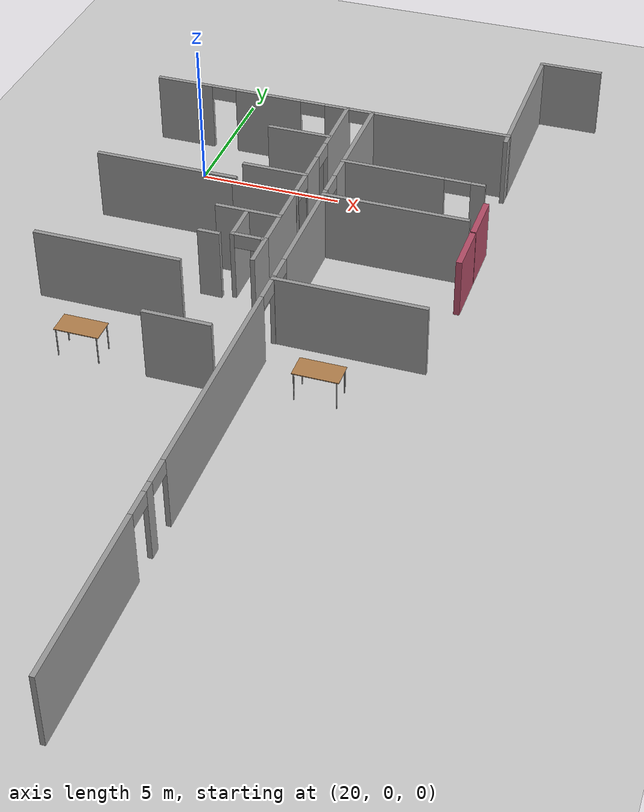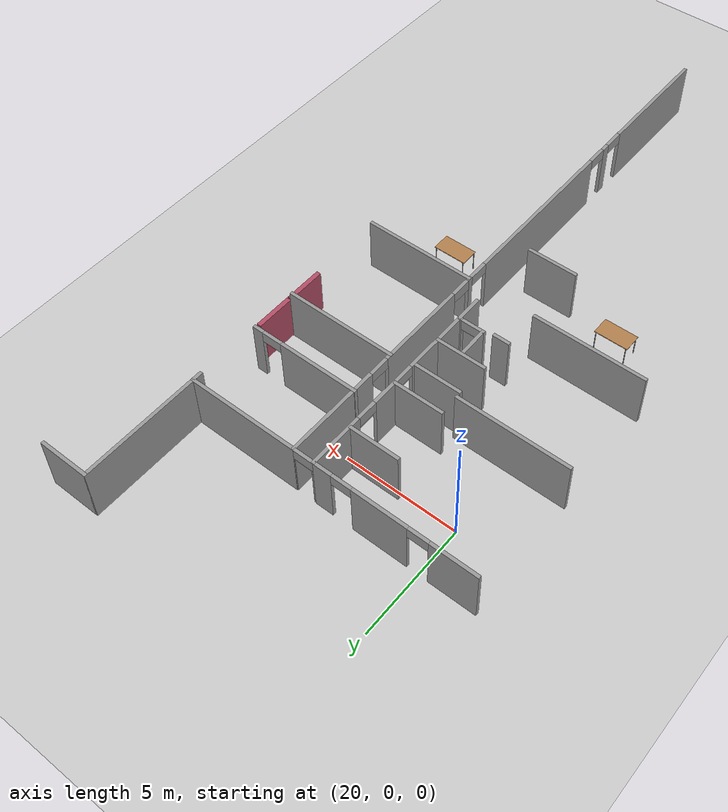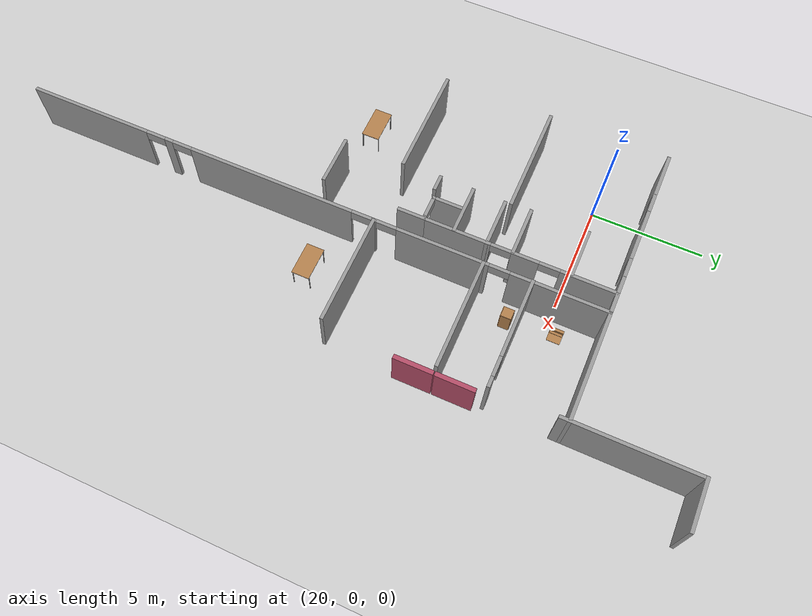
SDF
<sdf version="1.6">
 <world name="default">
  <model name="ground_plane">
   <pose>0 0 0.001 0 -0 0</pose>
   <static>1</static>
   <link name="link">
    <collision name="collision">
     <geometry><plane><normal>0 0 1</normal><size>100 100</size></plane></geometry>
     <surface><friction><ode><mu>100</mu><mu2>50</mu2></ode></friction></surface>
    </collision>
    <visual name="visual">
     <cast_shadows>0</cast_shadows>
     <geometry><plane><normal>0 0 1</normal><size>100 100</size></plane></geometry>
     <material>
      <script><uri>file://media/materials/scripts/gazebo.material</uri><name>Gazebo/Grey</name></script>
     </material>
    </visual>
   </link>
  </model>
  <model name="fin_se1f1.sdf">
   <pose>1.8125 -2.2901 0 0 -0 0</pose>
   <link name="Wall_12">
    <collision name="Wall_12_Collision">
     <geometry><box><size>5.75 0.15 2.5</size></box></geometry>
     <pose>0 0 1.25 0 -0 0</pose>
    </collision>
    <visual name="Wall_12_Visual">
     <pose>0 0 1.25 0 -0 0</pose>
     <geometry><box><size>5.75 0.15 2.5</size></box></geometry>
     <material>
      <script><uri>file://media/materials/scripts/gazebo.material</uri><name>Gazebo/Grey</name></script>
      <ambient>1 1 1 1</ambient>
     </material>
     <meta><layer>0</layer></meta>
    </visual>
    <pose>28.6504 6.82457 0 0 -0 1.5708</pose>
   </link>
   <link name="Wall_13">
    <collision name="Wall_13_Collision">
     <geometry><box><size>2.25 0.15 2.5</size></box></geometry>
     <pose>0 0 1.25 0 -0 0</pose>
    </collision>
    <visual name="Wall_13_Visual">
     <pose>0 0 1.25 0 -0 0</pose>
     <geometry><box><size>2.25 0.15 2.5</size></box></geometry>
     <material>
      <script><uri>file://media/materials/scripts/gazebo.material</uri><name>Gazebo/Grey</name></script>
      <ambient>1 1 1 1</ambient>
     </material>
     <meta><layer>0</layer></meta>
    </visual>
    <pose>29.7004 9.62457 0.001 0 -0 0</pose>
   </link>
   <link name="Wall_163">
    <pose>22.2268 4.38596 0 0 -0 3.14159</pose>
    <visual name="Wall_163_Visual_0">
     <pose>-4.00766 0 1.25 0 -0 0</pose>
     <geometry><box><size>4.98467 0.15 2.5</size></box></geometry>
     <material>
      <script><uri>file://media/materials/scripts/gazebo.material</uri><name>Gazebo/Grey</name></script>
      <ambient>1 1 1 1</ambient>
     </material>
     <meta><layer>0</layer></meta>
    </visual>
    <collision name="Wall_163_Collision_0">
     <geometry><box><size>4.98467 0.15 2.5</size></box></geometry>
     <pose>-4.00766 0 1.25 0 -0 0</pose>
    </collision>
    <visual name="Wall_163_Visual_1">
     <pose>-0.2105 0 1.25 0 -0 0</pose>
     <geometry><box><size>0.809654 0.15 2.5</size></box></geometry>
     <material>
      <script><uri>file://media/materials/scripts/gazebo.material</uri><name>Gazebo/Grey</name></script>
      <ambient>1 1 1 1</ambient>
     </material>
     <meta><layer>0</layer></meta>
    </visual>
    <collision name="Wall_163_Collision_1">
     <geometry><box><size>0.809654 0.15 2.5</size></box></geometry>
     <pose>-0.2105 0 1.25 0 -0 0</pose>
    </collision>
    <visual name="Wall_163_Visual_2">
     <pose>2.31375 0 1.25 0 -0 0</pose>
     <geometry><box><size>2.43885 0.15 2.5</size></box></geometry>
     <material>
      <script><uri>file://media/materials/scripts/gazebo.material</uri><name>Gazebo/Grey</name></script>
      <ambient>1 1 1 1</ambient>
     </material>
     <meta><layer>0</layer></meta>
    </visual>
    <collision name="Wall_163_Collision_2">
     <geometry><box><size>2.43885 0.15 2.5</size></box></geometry>
     <pose>2.31375 0 1.25 0 -0 0</pose>
    </collision>
    <visual name="Wall_163_Visual_3">
     <pose>5.46659 0 1.25 0 -0 0</pose>
     <geometry><box><size>2.06682 0.15 2.5</size></box></geometry>
     <material>
      <script><uri>file://media/materials/scripts/gazebo.material</uri><name>Gazebo/Grey</name></script>
      <ambient>1 1 1 1</ambient>
     </material>
     <meta><layer>0</layer></meta>
    </visual>
    <collision name="Wall_163_Collision_3">
     <geometry><box><size>2.06682 0.15 2.5</size></box></geometry>
     <pose>5.46659 0 1.25 0 -0 0</pose>
    </collision>
    <visual name="Wall_163_Visual_4">
     <pose>-1.06533 0 2.25 0 -0 0</pose>
     <geometry><box><size>0.9 0.15 0.5</size></box></geometry>
     <material>
      <script><uri>file://media/materials/scripts/gazebo.material</uri><name>Gazebo/Grey</name></script>
      <ambient>1 1 1 1</ambient>
     </material>
     <meta><layer>0</layer></meta>
    </visual>
    <collision name="Wall_163_Collision_4">
     <geometry><box><size>0.9 0.15 0.5</size></box></geometry>
     <pose>-1.06533 0 2.25 0 -0 0</pose>
    </collision>
    <visual name="Wall_163_Visual_5">
     <pose>0.644327 0 2.25 0 -0 0</pose>
     <geometry><box><size>0.9 0.15 0.5</size></box></geometry>
     <material>
      <script><uri>file://media/materials/scripts/gazebo.material</uri><name>Gazebo/Grey</name></script>
      <ambient>1 1 1 1</ambient>
     </material>
     <meta><layer>0</layer></meta>
    </visual>
    <collision name="Wall_163_Collision_5">
     <geometry><box><size>0.9 0.15 0.5</size></box></geometry>
     <pose>0.644327 0 2.25 0 -0 0</pose>
    </collision>
    <visual name="Wall_163_Visual_6">
     <pose>3.98318 0 2.25 0 -0 0</pose>
     <geometry><box><size>0.9 0.15 0.5</size></box></geometry>
     <material>
      <script><uri>file://media/materials/scripts/gazebo.material</uri><name>Gazebo/Grey</name></script>
      <ambient>1 1 1 1</ambient>
     </material>
     <meta><layer>0</layer></meta>
    </visual>
    <collision name="Wall_163_Collision_6">
     <geometry><box><size>0.9 0.15 0.5</size></box></geometry>
     <pose>3.98318 0 2.25 0 -0 0</pose>
    </collision>
   </link>
   <link name="Wall_169">
    <pose>23.7723 -8.93568 0 0 0 -1.5708</pose>
    <visual name="Wall_169_Visual_0">
     <pose>-11.2367 0 1.25 0 -0 0</pose>
     <geometry><box><size>4.27658 0.15 2.5</size></box></geometry>
     <material>
      <script><uri>file://media/materials/scripts/gazebo.material</uri><name>Gazebo/Grey</name></script>
      <ambient>1 1 1 1</ambient>
     </material>
     <meta><layer>0</layer></meta>
    </visual>
    <collision name="Wall_169_Collision_0">
     <geometry><box><size>4.27658 0.15 2.5</size></box></geometry>
     <pose>-11.2367 0 1.25 0 -0 0</pose>
    </collision>
    <visual name="Wall_169_Visual_1">
     <pose>-6.16439 0 1.25 0 -0 0</pose>
     <geometry><box><size>4.06805 0.15 2.5</size></box></geometry>
     <material>
      <script><uri>file://media/materials/scripts/gazebo.material</uri><name>Gazebo/Grey</name></script>
      <ambient>1 1 1 1</ambient>
     </material>
     <meta><layer>0</layer></meta>
    </visual>
    <collision name="Wall_169_Collision_1">
     <geometry><box><size>4.06805 0.15 2.5</size></box></geometry>
     <pose>-6.16439 0 1.25 0 -0 0</pose>
    </collision>
    <visual name="Wall_169_Visual_2">
     <pose>-3.11719 0 1.25 0 -0 0</pose>
     <geometry><box><size>0.22636 0.15 2.5</size></box></geometry>
     <material>
      <script><uri>file://media/materials/scripts/gazebo.material</uri><name>Gazebo/Grey</name></script>
      <ambient>1 1 1 1</ambient>
     </material>
     <meta><layer>0</layer></meta>
    </visual>
    <collision name="Wall_169_Collision_2">
     <geometry><box><size>0.22636 0.15 2.5</size></box></geometry>
     <pose>-3.11719 0 1.25 0 -0 0</pose>
    </collision>
    <visual name="Wall_169_Visual_3">
     <pose>1.70001 0 1.25 0 -0 0</pose>
     <geometry><box><size>7.60804 0.15 2.5</size></box></geometry>
     <material>
      <script><uri>file://media/materials/scripts/gazebo.material</uri><name>Gazebo/Grey</name></script>
      <ambient>1 1 1 1</ambient>
     </material>
     <meta><layer>0</layer></meta>
    </visual>
    <collision name="Wall_169_Collision_3">
     <geometry><box><size>7.60804 0.15 2.5</size></box></geometry>
     <pose>1.70001 0 1.25 0 -0 0</pose>
    </collision>
    <visual name="Wall_169_Visual_4">
     <pose>6.59767 0 1.25 0 -0 0</pose>
     <geometry><box><size>0.387269 0.15 2.5</size></box></geometry>
     <material>
      <script><uri>file://media/materials/scripts/gazebo.material</uri><name>Gazebo/Grey</name></script>
      <ambient>1 1 1 1</ambient>
     </material>
     <meta><layer>0</layer></meta>
    </visual>
    <collision name="Wall_169_Collision_4">
     <geometry><box><size>0.387269 0.15 2.5</size></box></geometry>
     <pose>6.59767 0 1.25 0 -0 0</pose>
    </collision>
    <visual name="Wall_169_Visual_5">
     <pose>10.5332 0 1.25 0 -0 0</pose>
     <geometry><box><size>5.6837 0.15 2.5</size></box></geometry>
     <material>
      <script><uri>file://media/materials/scripts/gazebo.material</uri><name>Gazebo/Grey</name></script>
      <ambient>1 1 1 1</ambient>
     </material>
     <meta><layer>0</layer></meta>
    </visual>
    <collision name="Wall_169_Collision_5">
     <geometry><box><size>5.6837 0.15 2.5</size></box></geometry>
     <pose>10.5332 0 1.25 0 -0 0</pose>
    </collision>
    <visual name="Wall_169_Visual_6">
     <pose>-8.64842 0 2.25 0 -0 0</pose>
     <geometry><box><size>0.9 0.15 0.5</size></box></geometry>
     <material>
      <script><uri>file://media/materials/scripts/gazebo.material</uri><name>Gazebo/Grey</name></script>
      <ambient>1 1 1 1</ambient>
     </material>
     <meta><layer>0</layer></meta>
    </visual>
    <collision name="Wall_169_Collision_6">
     <geometry><box><size>0.9 0.15 0.5</size></box></geometry>
     <pose>-8.64842 0 2.25 0 -0 0</pose>
    </collision>
    <visual name="Wall_169_Visual_7">
     <pose>-3.68037 0 2.25 0 -0 0</pose>
     <geometry><box><size>0.9 0.15 0.5</size></box></geometry>
     <material>
      <script><uri>file://media/materials/scripts/gazebo.material</uri><name>Gazebo/Grey</name></script>
      <ambient>1 1 1 1</ambient>
     </material>
     <meta><layer>0</layer></meta>
    </visual>
    <collision name="Wall_169_Collision_7">
     <geometry><box><size>0.9 0.15 0.5</size></box></geometry>
     <pose>-3.68037 0 2.25 0 -0 0</pose>
    </collision>
    <visual name="Wall_169_Visual_8">
     <pose>-2.55401 0 2.25 0 -0 0</pose>
     <geometry><box><size>0.9 0.15 0.5</size></box></geometry>
     <material>
      <script><uri>file://media/materials/scripts/gazebo.material</uri><name>Gazebo/Grey</name></script>
      <ambient>1 1 1 1</ambient>
     </material>
     <meta><layer>0</layer></meta>
    </visual>
    <collision name="Wall_169_Collision_8">
     <geometry><box><size>0.9 0.15 0.5</size></box></geometry>
     <pose>-2.55401 0 2.25 0 -0 0</pose>
    </collision>
    <visual name="Wall_169_Visual_9">
     <pose>5.95404 0 2.25 0 -0 0</pose>
     <geometry><box><size>0.9 0.15 0.5</size></box></geometry>
     <material>
      <script><uri>file://media/materials/scripts/gazebo.material</uri><name>Gazebo/Grey</name></script>
      <ambient>1 1 1 1</ambient>
     </material>
     <meta><layer>0</layer></meta>
    </visual>
    <collision name="Wall_169_Collision_9">
     <geometry><box><size>0.9 0.15 0.5</size></box></geometry>
     <pose>5.95404 0 2.25 0 -0 0</pose>
    </collision>
    <visual name="Wall_169_Visual_10">
     <pose>7.2413 0 2.25 0 -0 0</pose>
     <geometry><box><size>0.9 0.15 0.5</size></box></geometry>
     <material>
      <script><uri>file://media/materials/scripts/gazebo.material</uri><name>Gazebo/Grey</name></script>
      <ambient>1 1 1 1</ambient>
     </material>
     <meta><layer>0</layer></meta>
    </visual>
    <collision name="Wall_169_Collision_10">
     <geometry><box><size>0.9 0.15 0.5</size></box></geometry>
     <pose>7.2413 0 2.25 0 -0 0</pose>
    </collision>
   </link>
   <link name="Wall_171">
    <pose>22.8525 0.189322 0 0 0 -1.5708</pose>
    <visual name="Wall_171_Visual_0">
     <pose>-3.01682 0 1.25 0 -0 0</pose>
     <geometry><box><size>2.46636 0.15 2.5</size></box></geometry>
     <material>
      <script><uri>file://media/materials/scripts/gazebo.material</uri><name>Gazebo/Grey</name></script>
      <ambient>1 1 1 1</ambient>
     </material>
     <meta><layer>0</layer></meta>
    </visual>
    <collision name="Wall_171_Collision_0">
     <geometry><box><size>2.46636 0.15 2.5</size></box></geometry>
     <pose>-3.01682 0 1.25 0 -0 0</pose>
    </collision>
    <visual name="Wall_171_Visual_1">
     <pose>-0.287734 0 1.25 0 -0 0</pose>
     <geometry><box><size>1.19181 0.15 2.5</size></box></geometry>
     <material>
      <script><uri>file://media/materials/scripts/gazebo.material</uri><name>Gazebo/Grey</name></script>
      <ambient>1 1 1 1</ambient>
     </material>
     <meta><layer>0</layer></meta>
    </visual>
    <collision name="Wall_171_Collision_1">
     <geometry><box><size>1.19181 0.15 2.5</size></box></geometry>
     <pose>-0.287734 0 1.25 0 -0 0</pose>
    </collision>
    <visual name="Wall_171_Visual_2">
     <pose>2.72909 0 1.25 0 -0 0</pose>
     <geometry><box><size>3.04183 0.15 2.5</size></box></geometry>
     <material>
      <script><uri>file://media/materials/scripts/gazebo.material</uri><name>Gazebo/Grey</name></script>
      <ambient>1 1 1 1</ambient>
     </material>
     <meta><layer>0</layer></meta>
    </visual>
    <collision name="Wall_171_Collision_2">
     <geometry><box><size>3.04183 0.15 2.5</size></box></geometry>
     <pose>2.72909 0 1.25 0 -0 0</pose>
    </collision>
    <visual name="Wall_171_Visual_3">
     <pose>-1.33364 0 2.25 0 -0 0</pose>
     <geometry><box><size>0.9 0.15 0.5</size></box></geometry>
     <material>
      <script><uri>file://media/materials/scripts/gazebo.material</uri><name>Gazebo/Grey</name></script>
      <ambient>1 1 1 1</ambient>
     </material>
     <meta><layer>0</layer></meta>
    </visual>
    <collision name="Wall_171_Collision_3">
     <geometry><box><size>0.9 0.15 0.5</size></box></geometry>
     <pose>-1.33364 0 2.25 0 -0 0</pose>
    </collision>
    <visual name="Wall_171_Visual_4">
     <pose>0.758172 0 2.25 0 -0 0</pose>
     <geometry><box><size>0.9 0.15 0.5</size></box></geometry>
     <material>
      <script><uri>file://media/materials/scripts/gazebo.material</uri><name>Gazebo/Grey</name></script>
      <ambient>1 1 1 1</ambient>
     </material>
     <meta><layer>0</layer></meta>
    </visual>
    <collision name="Wall_171_Collision_4">
     <geometry><box><size>0.9 0.15 0.5</size></box></geometry>
     <pose>0.758172 0 2.25 0 -0 0</pose>
    </collision>
   </link>
   <link name="Wall_172">
    <pose>22.3025 -3.98568 0 0 -0 3.14159</pose>
    <visual name="Wall_172_Visual_0">
     <pose>-0.519407 0 1.25 0 -0 0</pose>
     <geometry><box><size>0.211186 0.15 2.5</size></box></geometry>
     <material>
      <script><uri>file://media/materials/scripts/gazebo.material</uri><name>Gazebo/Grey</name></script>
      <ambient>1 1 1 1</ambient>
     </material>
     <meta><layer>0</layer></meta>
    </visual>
    <collision name="Wall_172_Collision_0">
     <geometry><box><size>0.211186 0.15 2.5</size></box></geometry>
     <pose>-0.519407 0 1.25 0 -0 0</pose>
    </collision>
    <visual name="Wall_172_Visual_1">
     <pose>0.555593 0 1.25 0 -0 0</pose>
     <geometry><box><size>0.138814 0.15 2.5</size></box></geometry>
     <material>
      <script><uri>file://media/materials/scripts/gazebo.material</uri><name>Gazebo/Grey</name></script>
      <ambient>1 1 1 1</ambient>
     </material>
     <meta><layer>0</layer></meta>
    </visual>
    <collision name="Wall_172_Collision_1">
     <geometry><box><size>0.138814 0.15 2.5</size></box></geometry>
     <pose>0.555593 0 1.25 0 -0 0</pose>
    </collision>
    <visual name="Wall_172_Visual_2">
     <pose>0.036186 0 2.25 0 -0 0</pose>
     <geometry><box><size>0.9 0.15 0.5</size></box></geometry>
     <material>
      <script><uri>file://media/materials/scripts/gazebo.material</uri><name>Gazebo/Grey</name></script>
      <ambient>1 1 1 1</ambient>
     </material>
     <meta><layer>0</layer></meta>
    </visual>
    <collision name="Wall_172_Collision_2">
     <geometry><box><size>0.9 0.15 0.5</size></box></geometry>
     <pose>0.036186 0 2.25 0 -0 0</pose>
    </collision>
   </link>
   <link name="Wall_173">
    <collision name="Wall_173_Collision">
     <geometry><box><size>1.5 0.15 2.5</size></box></geometry>
     <pose>0 0 1.25 0 -0 0</pose>
    </collision>
    <visual name="Wall_173_Visual">
     <pose>0 0 1.25 0 -0 0</pose>
     <geometry><box><size>1.5 0.15 2.5</size></box></geometry>
     <material>
      <script><uri>file://media/materials/scripts/gazebo.material</uri><name>Gazebo/Grey</name></script>
      <ambient>1 1 1 1</ambient>
     </material>
     <meta><layer>0</layer></meta>
    </visual>
    <pose>21.7525 -3.31068 0 0 -0 1.5708</pose>
   </link>
   <link name="Wall_178">
    <collision name="Wall_178_Collision">
     <geometry><box><size>2.25 0.15 2.5</size></box></geometry>
     <pose>0 0 1.25 0 -0 0</pose>
    </collision>
    <visual name="Wall_178_Visual">
     <pose>0 0 1.25 0 -0 0</pose>
     <geometry><box><size>2.25 0.15 2.5</size></box></geometry>
     <material>
      <script><uri>file://media/materials/scripts/gazebo.material</uri><name>Gazebo/Grey</name></script>
      <ambient>1 1 1 1</ambient>
     </material>
     <meta><layer>0</layer></meta>
    </visual>
    <pose>21.751 2.44334 0.001 0 -0 0</pose>
   </link>
   <link name="Wall_180">
    <collision name="Wall_180_Collision">
     <geometry><box><size>2.25 0.15 2.5</size></box></geometry>
     <pose>0 0 1.25 0 -0 0</pose>
    </collision>
    <visual name="Wall_180_Visual">
     <pose>0 0 1.25 0 -0 0</pose>
     <geometry><box><size>2.25 0.15 2.5</size></box></geometry>
     <material>
      <script><uri>file://media/materials/scripts/gazebo.material</uri><name>Gazebo/Grey</name></script>
      <ambient>1 1 1 1</ambient>
     </material>
     <meta><layer>0</layer></meta>
    </visual>
    <pose>21.751 -0.065056 0.001 0 -0 0</pose>
   </link>
   <link name="Wall_182">
    <collision name="Wall_182_Collision">
     <geometry><box><size>2.25 0.15 2.5</size></box></geometry>
     <pose>0 0 1.25 0 -0 0</pose>
    </collision>
    <visual name="Wall_182_Visual">
     <pose>0 0 1.25 0 -0 0</pose>
     <geometry><box><size>2.25 0.15 2.5</size></box></geometry>
     <material>
      <script><uri>file://media/materials/scripts/gazebo.material</uri><name>Gazebo/Grey</name></script>
      <ambient>1 1 1 1</ambient>
     </material>
     <meta><layer>0</layer></meta>
    </visual>
    <pose>21.7816 -2.63463 0.001 0 -0 0</pose>
   </link>
   <link name="Wall_184">
    <collision name="Wall_184_Collision">
     <geometry><box><size>2.25 0.15 2.5</size></box></geometry>
     <pose>0 0 1.25 0 -0 0</pose>
    </collision>
    <visual name="Wall_184_Visual">
     <pose>0 0 1.25 0 -0 0</pose>
     <geometry><box><size>2.25 0.15 2.5</size></box></geometry>
     <material>
      <script><uri>file://media/materials/scripts/gazebo.material</uri><name>Gazebo/Grey</name></script>
      <ambient>1 1 1 1</ambient>
     </material>
     <meta><layer>0</layer></meta>
    </visual>
    <pose>21.8132 -1.19202 0 0 -0 3.14159</pose>
   </link>
   <link name="Wall_186">
    <collision name="Wall_186_Collision">
     <geometry><box><size>0.75 0.15 2.5</size></box></geometry>
     <pose>0 0 1.25 0 -0 0</pose>
    </collision>
    <visual name="Wall_186_Visual">
     <pose>0 0 1.25 0 -0 0</pose>
     <geometry><box><size>0.75 0.15 2.5</size></box></geometry>
     <material>
      <script><uri>file://media/materials/scripts/gazebo.material</uri><name>Gazebo/Grey</name></script>
      <ambient>1 1 1 1</ambient>
     </material>
     <meta><layer>0</layer></meta>
    </visual>
    <pose>21.0031 -4.12868 0 0 -0 3.14159</pose>
   </link>
   <link name="Wall_188">
    <collision name="Wall_188_Collision">
     <geometry><box><size>1.25 0.15 2.5</size></box></geometry>
     <pose>0 0 1.25 0 -0 0</pose>
    </collision>
    <visual name="Wall_188_Visual">
     <pose>0 0 1.25 0 -0 0</pose>
     <geometry><box><size>1.25 0.15 2.5</size></box></geometry>
     <material>
      <script><uri>file://media/materials/scripts/gazebo.material</uri><name>Gazebo/Grey</name></script>
      <ambient>1 1 1 1</ambient>
     </material>
     <meta><layer>0</layer></meta>
    </visual>
    <pose>22.8525 -4.53568 0 0 0 -1.5708</pose>
   </link>
   <link name="Wall_190">
    <collision name="Wall_190_Collision">
     <geometry><box><size>5 0.15 2.5</size></box></geometry>
     <pose>0 0 1.25 0 -0 0</pose>
    </collision>
    <visual name="Wall_190_Visual">
     <pose>0 0 1.25 0 -0 0</pose>
     <geometry><box><size>5 0.15 2.5</size></box></geometry>
     <material>
      <script><uri>file://media/materials/scripts/gazebo.material</uri><name>Gazebo/Grey</name></script>
      <ambient>1 1 1 1</ambient>
     </material>
     <meta><layer>0</layer></meta>
    </visual>
    <pose>18.2357 -0.947296 0 0 -0 3.14159</pose>
   </link>
   <link name="Wall_192">
    <pose>26.1753 1.13284 0.001 0 -0 0</pose>
    <visual name="Wall_192_Visual_0">
     <pose>-0.694062 0 1.25 0 -0 0</pose>
     <geometry><box><size>3.61188 0.15 2.5</size></box></geometry>
     <material>
      <script><uri>file://media/materials/scripts/gazebo.material</uri><name>Gazebo/Grey</name></script>
      <ambient>1 1 1 1</ambient>
     </material>
     <meta><layer>0</layer></meta>
    </visual>
    <collision name="Wall_192_Collision_0">
     <geometry><box><size>3.61188 0.15 2.5</size></box></geometry>
     <pose>-0.694062 0 1.25 0 -0 0</pose>
    </collision>
    <visual name="Wall_192_Visual_1">
     <pose>2.25594 0 1.25 0 -0 0</pose>
     <geometry><box><size>0.488124 0.15 2.5</size></box></geometry>
     <material>
      <script><uri>file://media/materials/scripts/gazebo.material</uri><name>Gazebo/Grey</name></script>
      <ambient>1 1 1 1</ambient>
     </material>
     <meta><layer>0</layer></meta>
    </visual>
    <collision name="Wall_192_Collision_1">
     <geometry><box><size>0.488124 0.15 2.5</size></box></geometry>
     <pose>2.25594 0 1.25 0 -0 0</pose>
    </collision>
    <visual name="Wall_192_Visual_2">
     <pose>1.56188 0 2.25 0 -0 0</pose>
     <geometry><box><size>0.9 0.15 0.5</size></box></geometry>
     <material>
      <script><uri>file://media/materials/scripts/gazebo.material</uri><name>Gazebo/Grey</name></script>
      <ambient>1 1 1 1</ambient>
     </material>
     <meta><layer>0</layer></meta>
    </visual>
    <collision name="Wall_192_Collision_2">
     <geometry><box><size>0.9 0.15 0.5</size></box></geometry>
     <pose>1.56188 0 2.25 0 -0 0</pose>
    </collision>
   </link>
   <link name="Wall_194">
    <collision name="Wall_194_Collision">
     <geometry><box><size>5 0.15 2.5</size></box></geometry>
     <pose>0 0 1.25 0 -0 0</pose>
    </collision>
    <visual name="Wall_194_Visual">
     <pose>0 0 1.25 0 -0 0</pose>
     <geometry><box><size>5 0.15 2.5</size></box></geometry>
     <material>
      <script><uri>file://media/materials/scripts/gazebo.material</uri><name>Gazebo/Grey</name></script>
      <ambient>1 1 1 1</ambient>
     </material>
     <meta><layer>0</layer></meta>
    </visual>
    <pose>26.2059 -0.977886 0.001 0 -0 0</pose>
   </link>
   <link name="Wall_196">
    <collision name="Wall_196_Collision">
     <geometry><box><size>5 0.15 2.5</size></box></geometry>
     <pose>0 0 1.25 0 -0 0</pose>
    </collision>
    <visual name="Wall_196_Visual">
     <pose>0 0 1.25 0 -0 0</pose>
     <geometry><box><size>5 0.15 2.5</size></box></geometry>
     <material>
      <script><uri>file://media/materials/scripts/gazebo.material</uri><name>Gazebo/Grey</name></script>
      <ambient>1 1 1 1</ambient>
     </material>
     <meta><layer>0</layer></meta>
    </visual>
    <pose>26.2233 -5.83852 0.001 0 -0 0</pose>
   </link>
   <link name="Wall_198">
    <collision name="Wall_198_Collision">
     <geometry><box><size>5 0.15 2.5</size></box></geometry>
     <pose>0 0 1.25 0 -0 0</pose>
    </collision>
    <visual name="Wall_198_Visual">
     <pose>0 0 1.25 0 -0 0</pose>
     <geometry><box><size>5 0.15 2.5</size></box></geometry>
     <material>
      <script><uri>file://media/materials/scripts/gazebo.material</uri><name>Gazebo/Grey</name></script>
      <ambient>1 1 1 1</ambient>
     </material>
     <meta><layer>0</layer></meta>
    </visual>
    <pose>18.2432 -5.83852 0.001 0 -0 0</pose>
   </link>
   <link name="Wall_201">
    <collision name="Wall_201_Collision">
     <geometry><box><size>2.25 0.15 2.5</size></box></geometry>
     <pose>0 0 1.25 0 -0 0</pose>
    </collision>
    <visual name="Wall_201_Visual">
     <pose>0 0 1.25 0 -0 0</pose>
     <geometry><box><size>2.25 0.15 2.5</size></box></geometry>
     <material>
      <script><uri>file://media/materials/scripts/gazebo.material</uri><name>Gazebo/Grey</name></script>
      <ambient>1 1 1 1</ambient>
     </material>
     <meta><layer>0</layer></meta>
    </visual>
    <pose>21.736 -8.57834 0.001 0 -0 0</pose>
   </link>
   <static>1</static>
  </model>
  <model name="table_13">
   <static>1</static>
   <link name="link">
    <collision name="surface">
     <pose>0 0 1 0 -0 0</pose>
     <geometry><box><size>1.5 0.8 0.03</size></box></geometry>
     <surface><friction><ode><mu>0.6</mu><mu2>0.6</mu2></ode></friction></surface>
    </collision>
    <visual name="visual1">
     <pose>0 0 1 0 -0 0</pose>
     <geometry><box><size>1.5 0.8 0.03</size></box></geometry>
     <material>
      <script><uri>file://media/materials/scripts/gazebo.material</uri><name>Gazebo/Wood</name></script>
     </material>
    </visual>
    <collision name="front_left_leg">
     <pose>0.68 0.38 0.5 0 -0 0</pose>
     <geometry><cylinder><radius>0.02</radius><length>1</length></cylinder></geometry>
    </collision>
    <visual name="front_left_leg">
     <pose>0.68 0.38 0.5 0 -0 0</pose>
     <geometry><cylinder><radius>0.02</radius><length>1</length></cylinder></geometry>
     <material>
      <script><uri>file://media/materials/scripts/gazebo.material</uri><name>Gazebo/Grey</name></script>
     </material>
    </visual>
    <collision name="front_right_leg">
     <pose>0.68 -0.38 0.5 0 -0 0</pose>
     <geometry><cylinder><radius>0.02</radius><length>1</length></cylinder></geometry>
    </collision>
    <visual name="front_right_leg">
     <pose>0.68 -0.38 0.5 0 -0 0</pose>
     <geometry><cylinder><radius>0.02</radius><length>1</length></cylinder></geometry>
     <material>
      <script><uri>file://media/materials/scripts/gazebo.material</uri><name>Gazebo/Grey</name></script>
     </material>
    </visual>
    <collision name="back_right_leg">
     <pose>-0.68 -0.38 0.5 0 -0 0</pose>
     <geometry><cylinder><radius>0.02</radius><length>1</length></cylinder></geometry>
    </collision>
    <visual name="back_right_leg">
     <pose>-0.68 -0.38 0.5 0 -0 0</pose>
     <geometry><cylinder><radius>0.02</radius><length>1</length></cylinder></geometry>
     <material>
      <script><uri>file://media/materials/scripts/gazebo.material</uri><name>Gazebo/Grey</name></script>
     </material>
    </visual>
    <collision name="back_left_leg">
     <pose>-0.68 0.38 0.5 0 -0 0</pose>
     <geometry><cylinder><radius>0.02</radius><length>1</length></cylinder></geometry>
    </collision>
    <visual name="back_left_leg">
     <pose>-0.68 0.38 0.5 0 -0 0</pose>
     <geometry><cylinder><radius>0.02</radius><length>1</length></cylinder></geometry>
     <material>
      <script><uri>file://media/materials/scripts/gazebo.material</uri><name>Gazebo/Grey</name></script>
     </material>
    </visual>
   </link>
   <pose>20.1153 -10.4407 0.001 0 -0 0</pose>
  </model>
  <model name="table_14">
   <static>1</static>
   <link name="link">
    <collision name="surface">
     <pose>0 0 1 0 -0 0</pose>
     <geometry><box><size>1.5 0.8 0.03</size></box></geometry>
     <surface><friction><ode><mu>0.6</mu><mu2>0.6</mu2></ode></friction></surface>
    </collision>
    <visual name="visual1">
     <pose>0 0 1 0 -0 0</pose>
     <geometry><box><size>1.5 0.8 0.03</size></box></geometry>
     <material>
      <script><uri>file://media/materials/scripts/gazebo.material</uri><name>Gazebo/Wood</name></script>
     </material>
    </visual>
    <collision name="front_left_leg">
     <pose>0.68 0.38 0.5 0 -0 0</pose>
     <geometry><cylinder><radius>0.02</radius><length>1</length></cylinder></geometry>
    </collision>
    <visual name="front_left_leg">
     <pose>0.68 0.38 0.5 0 -0 0</pose>
     <geometry><cylinder><radius>0.02</radius><length>1</length></cylinder></geometry>
     <material>
      <script><uri>file://media/materials/scripts/gazebo.material</uri><name>Gazebo/Grey</name></script>
     </material>
    </visual>
    <collision name="front_right_leg">
     <pose>0.68 -0.38 0.5 0 -0 0</pose>
     <geometry><cylinder><radius>0.02</radius><length>1</length></cylinder></geometry>
    </collision>
    <visual name="front_right_leg">
     <pose>0.68 -0.38 0.5 0 -0 0</pose>
     <geometry><cylinder><radius>0.02</radius><length>1</length></cylinder></geometry>
     <material>
      <script><uri>file://media/materials/scripts/gazebo.material</uri><name>Gazebo/Grey</name></script>
     </material>
    </visual>
    <collision name="back_right_leg">
     <pose>-0.68 -0.38 0.5 0 -0 0</pose>
     <geometry><cylinder><radius>0.02</radius><length>1</length></cylinder></geometry>
    </collision>
    <visual name="back_right_leg">
     <pose>-0.68 -0.38 0.5 0 -0 0</pose>
     <geometry><cylinder><radius>0.02</radius><length>1</length></cylinder></geometry>
     <material>
      <script><uri>file://media/materials/scripts/gazebo.material</uri><name>Gazebo/Grey</name></script>
     </material>
    </visual>
    <collision name="back_left_leg">
     <pose>-0.68 0.38 0.5 0 -0 0</pose>
     <geometry><cylinder><radius>0.02</radius><length>1</length></cylinder></geometry>
    </collision>
    <visual name="back_left_leg">
     <pose>-0.68 0.38 0.5 0 -0 0</pose>
     <geometry><cylinder><radius>0.02</radius><length>1</length></cylinder></geometry>
     <material>
      <script><uri>file://media/materials/scripts/gazebo.material</uri><name>Gazebo/Grey</name></script>
     </material>
    </visual>
   </link>
   <pose>27.7645 -10.1765 0.001 0 -0 0</pose>
  </model>
  <model name="wooden_case">
   <link name="base">
    <pose>0 0 0.024 0 -0 0</pose>
    <inertial>
     <pose>-0.022184 0 0.171592 0 -0 0</pose>
     <mass>3.96264</mass>
     <inertia>
      <ixx>0.213536</ixx>
      <ixy>0</ixy>
      <ixz>0.000779377</ixz>
      <iyy>0.0708943</iyy>
      <iyz>0</iyz>
      <izz>0.154604</izz>
     </inertia>
    </inertial>
    <collision name="collision_back">
     <pose>-0.053975 0 0.1778 0 -0 0</pose>
     <geometry><box><size>0.01905 0.5461 0.3175</size></box></geometry>
     <surface>
      <contact>
       <poissons_ratio>0.347</poissons_ratio>
       <elastic_modulus>8.8e+09</elastic_modulus>
       <ode><kp>100000</kp><kd>100</kd><max_vel>100</max_vel><min_depth>0.001</min_depth></ode>
      </contact>
      <friction>
       <torsional>
        <coefficient>1</coefficient>
        <use_patch_radius>0</use_patch_radius>
        <surface_radius>0.01</surface_radius>
       </torsional>
      </friction>
     </surface>
    </collision>
    <visual name="visual_back">
     <pose>-0.053975 0 0.1778 0 -0 0</pose>
     <geometry><box><size>0.01905 0.5461 0.3175</size></box></geometry>
     <material>
      <script><uri>file://media/materials/scripts/gazebo.material</uri><name>Gazebo/Wood</name></script>
     </material>
    </visual>
    <collision name="collision_bottom">
     <pose>0 0 0.009525 0 -0 0</pose>
     <geometry><box><size>0.127 0.5842 0.01905</size></box></geometry>
     <surface>
      <contact>
       <poissons_ratio>0.347</poissons_ratio>
       <elastic_modulus>8.8e+09</elastic_modulus>
       <ode><kp>100000</kp><kd>100</kd><max_vel>100</max_vel><min_depth>0.001</min_depth></ode>
      </contact>
      <friction>
       <torsional>
        <coefficient>1</coefficient>
        <use_patch_radius>0</use_patch_radius>
        <surface_radius>0.01</surface_radius>
       </torsional>
      </friction>
     </surface>
    </collision>
    <visual name="visual_bottom">
     <pose>0 0 0.009525 0 -0 0</pose>
     <geometry><box><size>0.127 0.5842 0.01905</size></box></geometry>
     <material>
      <script><uri>file://media/materials/scripts/gazebo.material</uri><name>Gazebo/Wood</name></script>
     </material>
    </visual>
    <collision name="collision_top">
     <pose>0 0 0.346075 0 -0 0</pose>
     <geometry><box><size>0.127 0.5842 0.01905</size></box></geometry>
     <surface>
      <contact>
       <poissons_ratio>0.347</poissons_ratio>
       <elastic_modulus>8.8e+09</elastic_modulus>
       <ode><kp>100000</kp><kd>100</kd><max_vel>100</max_vel><min_depth>0.001</min_depth></ode>
      </contact>
      <friction>
       <torsional>
        <coefficient>1</coefficient>
        <use_patch_radius>0</use_patch_radius>
        <surface_radius>0.01</surface_radius>
       </torsional>
      </friction>
     </surface>
    </collision>
    <visual name="visual_top">
     <pose>0 0 0.346075 0 -0 0</pose>
     <geometry><box><size>0.127 0.5842 0.01905</size></box></geometry>
     <material>
      <script><uri>file://media/materials/scripts/gazebo.material</uri><name>Gazebo/Wood</name></script>
     </material>
    </visual>
    <collision name="collision_left">
     <pose>0 -0.282575 0.1778 0 -0 0</pose>
     <geometry><box><size>0.127 0.01905 0.3175</size></box></geometry>
     <surface>
      <contact>
       <poissons_ratio>0.347</poissons_ratio>
       <elastic_modulus>8.8e+09</elastic_modulus>
       <ode><kp>100000</kp><kd>100</kd><max_vel>100</max_vel><min_depth>0.001</min_depth></ode>
      </contact>
      <friction>
       <torsional>
        <coefficient>1</coefficient>
        <use_patch_radius>0</use_patch_radius>
        <surface_radius>0.01</surface_radius>
       </torsional>
      </friction>
     </surface>
    </collision>
    <visual name="visual_left">
     <pose>0 -0.282575 0.1778 0 -0 0</pose>
     <geometry><box><size>0.127 0.01905 0.3175</size></box></geometry>
     <material>
      <script><uri>file://media/materials/scripts/gazebo.material</uri><name>Gazebo/Wood</name></script>
     </material>
    </visual>
    <collision name="collision_right">
     <pose>0 0.282575 0.1778 0 -0 0</pose>
     <geometry><box><size>0.127 0.01905 0.3175</size></box></geometry>
     <surface>
      <contact>
       <poissons_ratio>0.347</poissons_ratio>
       <elastic_modulus>8.8e+09</elastic_modulus>
       <ode><kp>100000</kp><kd>100</kd><max_vel>100</max_vel><min_depth>0.001</min_depth></ode>
      </contact>
      <friction>
       <torsional>
        <coefficient>1</coefficient>
        <use_patch_radius>0</use_patch_radius>
        <surface_radius>0.01</surface_radius>
       </torsional>
      </friction>
     </surface>
    </collision>
    <visual name="visual_right">
     <pose>0 0.282575 0.1778 0 -0 0</pose>
     <geometry><box><size>0.127 0.01905 0.3175</size></box></geometry>
     <material>
      <script><uri>file://media/materials/scripts/gazebo.material</uri><name>Gazebo/Wood</name></script>
     </material>
    </visual>
    <collision name="collision_block_left">
     <pose>0.0095 -0.2151 -0.012 0 -0 0</pose>
     <geometry><box><size>0.108 0.05 0.024</size></box></geometry>
     <surface>
      <contact>
       <poissons_ratio>0.347</poissons_ratio>
       <elastic_modulus>8.8e+09</elastic_modulus>
       <ode><kp>100000</kp><kd>100</kd><max_vel>100</max_vel><min_depth>0.001</min_depth></ode>
      </contact>
      <friction>
       <torsional>
        <coefficient>1</coefficient>
        <use_patch_radius>0</use_patch_radius>
        <surface_radius>0.01</surface_radius>
       </torsional>
      </friction>
     </surface>
    </collision>
    <visual name="visual_block_left">
     <pose>0.0095 -0.2151 -0.012 0 -0 0</pose>
     <geometry><box><size>0.108 0.05 0.024</size></box></geometry>
     <material>
      <script><uri>file://media/materials/scripts/gazebo.material</uri><name>Gazebo/Wood</name></script>
     </material>
    </visual>
    <collision name="collision_block_right">
     <pose>0.0095 0.2151 -0.012 0 -0 0</pose>
     <geometry><box><size>0.108 0.05 0.024</size></box></geometry>
     <surface>
      <contact>
       <poissons_ratio>0.347</poissons_ratio>
       <elastic_modulus>8.8e+09</elastic_modulus>
       <ode><kp>100000</kp><kd>100</kd><max_vel>100</max_vel><min_depth>0.001</min_depth></ode>
      </contact>
      <friction>
       <torsional>
        <coefficient>1</coefficient>
        <use_patch_radius>0</use_patch_radius>
        <surface_radius>0.01</surface_radius>
       </torsional>
      </friction>
     </surface>
    </collision>
    <visual name="visual_block_right">
     <pose>0.0095 0.2151 -0.012 0 -0 0</pose>
     <geometry><box><size>0.108 0.05 0.024</size></box></geometry>
     <material>
      <script><uri>file://media/materials/scripts/gazebo.material</uri><name>Gazebo/Wood</name></script>
     </material>
    </visual>
   </link>
   <link name="lid">
    <pose>0.243775 0 0.009525 0 -0 0</pose>
    <inertial>
     <mass>1.97874</mass>
     <inertia>
      <ixx>0.0563367</ixx>
      <ixy>0</ixy>
      <ixz>0</ixz>
      <iyy>0.020911</iyy>
      <iyz>0</iyz>
      <izz>0.0771281</izz>
     </inertia>
    </inertial>
    <collision name="collision">
     <geometry><box><size>0.3556 0.5842 0.01905</size></box></geometry>
     <surface>
      <contact>
       <poissons_ratio>0.347</poissons_ratio>
       <elastic_modulus>8.8e+09</elastic_modulus>
       <ode><kp>100000</kp><kd>100</kd><max_vel>100</max_vel><min_depth>0.001</min_depth></ode>
      </contact>
      <friction>
       <torsional>
        <coefficient>1</coefficient>
        <use_patch_radius>0</use_patch_radius>
        <surface_radius>0.01</surface_radius>
       </torsional>
      </friction>
     </surface>
    </collision>
    <visual name="visual">
     <geometry><box><size>0.3556 0.5842 0.01905</size></box></geometry>
     <material>
      <script><uri>file://media/materials/scripts/gazebo.material</uri><name>Gazebo/Wood</name></script>
     </material>
    </visual>
    <visual name="tee_nut_1">
     <pose>0.122 -0.216 0.001 0 -0 0</pose>
     <geometry><cylinder><radius>0.00635</radius><length>0.0192405</length></cylinder></geometry>
     <material>
      <script><uri>file://media/materials/scripts/gazebo.material</uri><name>Gazebo/Grey</name></script>
     </material>
    </visual>
    <visual name="tee_nut_2">
     <pose>0.122 -0.088 0.001 0 -0 0</pose>
     <geometry><cylinder><radius>0.00635</radius><length>0.0192405</length></cylinder></geometry>
     <material>
      <script><uri>file://media/materials/scripts/gazebo.material</uri><name>Gazebo/Grey</name></script>
     </material>
    </visual>
    <visual name="tee_nut_3">
     <pose>0.122 0.088 0.001 0 -0 0</pose>
     <geometry><cylinder><radius>0.00635</radius><length>0.0192405</length></cylinder></geometry>
     <material>
      <script><uri>file://media/materials/scripts/gazebo.material</uri><name>Gazebo/Grey</name></script>
     </material>
    </visual>
    <visual name="tee_nut_4">
     <pose>0.122 0.216 0.001 0 -0 0</pose>
     <geometry><cylinder><radius>0.00635</radius><length>0.0192405</length></cylinder></geometry>
     <material>
      <script><uri>file://media/materials/scripts/gazebo.material</uri><name>Gazebo/Grey</name></script>
     </material>
    </visual>
   </link>
   <joint name="lid_hinge" type="revolute">
    <pose>-0.1778 0 0.01905 0 -0 0</pose>
    <parent>base</parent>
    <child>lid</child>
    <axis>
     <xyz>0 1 0</xyz>
     <limit><upper>0.523599</upper><lower>-1.5708</lower></limit>
     <use_parent_model_frame>0</use_parent_model_frame>
     <dynamics><spring_reference>0</spring_reference><spring_stiffness>0</spring_stiffness></dynamics>
    </axis>
   </joint>
   <pose>26.129 0.463112 -0.001057 0 -0.000428 0</pose>
  </model>
  <model name="cabinet">
   <static>1</static>
   <link name="cabinet_bottom_plate">
    <inertial>
     <pose>0 0 -1 0 -0 0</pose>
     <inertia><ixx>2.05</ixx><ixy>0</ixy><ixz>0</ixz><iyy>2.05</iyy><iyz>0</iyz><izz>2.05</izz></inertia>
     <mass>25</mass>
    </inertial>
    <collision name="cabinet_bottom_plate_geom">
     <pose>0 0 0.01 0 -0 0</pose>
     <geometry><box><size>0.45 0.45 0.02</size></box></geometry>
    </collision>
    <visual name="cabinet_bottom_plate_geom_visual">
     <pose>0 0 0.01 0 -0 0</pose>
     <geometry><box><size>0.45 0.45 0.02</size></box></geometry>
     <material>
      <script><uri>file://media/materials/scripts/gazebo.material</uri><name>Gazebo/Wood</name></script>
     </material>
    </visual>
    <collision name="cabinet_bottom_plate_geom_cabinet_back_plate">
     <pose>0.235 0 0.51 0 -0 0</pose>
     <geometry><box><size>0.02 0.45 1.02</size></box></geometry>
    </collision>
    <visual name="cabinet_bottom_plate_geom_cabinet_back_plate_visual">
     <pose>0.235 0 0.51 0 -0 0</pose>
     <geometry><box><size>0.02 0.45 1.02</size></box></geometry>
     <material>
      <script><uri>file://media/materials/scripts/gazebo.material</uri><name>Gazebo/Wood</name></script>
     </material>
    </visual>
    <collision name="cabinet_bottom_plate_geom_cabinet_left_plate">
     <pose>0 0.235 0.51 0 -0 0</pose>
     <geometry><box><size>0.45 0.02 1.02</size></box></geometry>
    </collision>
    <visual name="cabinet_bottom_plate_geom_cabinet_left_plate_visual">
     <pose>0 0.235 0.51 0 -0 0</pose>
     <geometry><box><size>0.45 0.02 1.02</size></box></geometry>
     <material>
      <script><uri>file://media/materials/scripts/gazebo.material</uri><name>Gazebo/Wood</name></script>
     </material>
    </visual>
    <collision name="cabinet_bottom_plate_geom_cabinet_middle_plate">
     <pose>0 0 0.51 0 -0 0</pose>
     <geometry><box><size>0.45 0.45 0.02</size></box></geometry>
    </collision>
    <visual name="cabinet_bottom_plate_geom_cabinet_middle_plate_visual">
     <pose>0 0 0.51 0 -0 0</pose>
     <geometry><box><size>0.45 0.45 0.02</size></box></geometry>
     <material>
      <script><uri>file://media/materials/scripts/gazebo.material</uri><name>Gazebo/Wood</name></script>
     </material>
    </visual>
    <collision name="cabinet_bottom_plate_geom_cabinet_right_plate">
     <pose>0 -0.235 0.51 0 -0 0</pose>
     <geometry><box><size>0.45 0.02 1.02</size></box></geometry>
    </collision>
    <visual name="cabinet_bottom_plate_geom_cabinet_right_plate_visual">
     <pose>0 -0.235 0.51 0 -0 0</pose>
     <geometry><box><size>0.45 0.02 1.02</size></box></geometry>
     <material>
      <script><uri>file://media/materials/scripts/gazebo.material</uri><name>Gazebo/Wood</name></script>
     </material>
    </visual>
    <collision name="cabinet_bottom_plate_geom_cabinet_top_plate">
     <pose>0 0 1.01 0 -0 0</pose>
     <geometry><box><size>0.45 0.45 0.02</size></box></geometry>
    </collision>
    <visual name="cabinet_bottom_plate_geom_cabinet_top_plate_visual">
     <pose>0 0 1.01 0 -0 0</pose>
     <geometry><box><size>0.45 0.45 0.02</size></box></geometry>
     <material>
      <script><uri>file://media/materials/scripts/gazebo.material</uri><name>Gazebo/Wood</name></script>
     </material>
    </visual>
   </link>
   <pose>26.5603 -1.66057 0.001 0 -0 0</pose>
  </model>
  <model name="doorOutside_clone_8_clone_2">
   <link name="link">
    <pose>0.155539 -0.366282 0.216958 0 -0 0</pose>
    <inertial>
     <mass>2.13199</mass>
     <inertia>
      <ixx>0.452656</ixx>
      <ixy>0</ixy>
      <ixz>0</ixz>
      <iyy>0.796738</iyy>
      <iyz>0</iyz>
      <izz>0.699414</izz>
     </inertia>
     <pose>0 0 0.001 0 -0 0</pose>
    </inertial>
    <visual name="visual">
     <geometry><box><size>1.71368 0.198843 2.05986</size></box></geometry>
     <material>
      <script><name>Gazebo/Grey</name><uri>file://media/materials/scripts/gazebo.material</uri></script>
      <ambient>0.7 0.3 0.4 1</ambient>
      <diffuse>0.7 0.7 0.7 1</diffuse>
      <specular>0.01 0.01 0.01 1</specular>
      <emissive>0 0 0 1</emissive>
      <shader type="vertex"><normal_map>__default__</normal_map></shader>
      <lighting>0</lighting>
     </material>
     <pose>0 0 0.001 0 -0 0</pose>
    </visual>
    <collision name="collision">
     <pose>0 0 0.001 0 -0 0</pose>
     <geometry><box><size>1.71368 0.198843 2.05986</size></box></geometry>
     <surface>
      <friction>
       <ode><mu>1</mu><mu2>1</mu2><fdir1>0 0 0</fdir1><slip1>0</slip1><slip2>0</slip2></ode>
       <torsional>
        <coefficient>1</coefficient>
        <patch_radius>0</patch_radius>
        <surface_radius>0</surface_radius>
        <use_patch_radius>1</use_patch_radius>
        <ode><slip>0</slip></ode>
       </torsional>
      </friction>
      <bounce><restitution_coefficient>0</restitution_coefficient><threshold>1e+06</threshold></bounce>
      <contact>
       <collide_without_contact>0</collide_without_contact>
       <collide_without_contact_bitmask>1</collide_without_contact_bitmask>
       <collide_bitmask>1</collide_bitmask>
       <ode>
        <soft_cfm>0</soft_cfm>
        <soft_erp>0.2</soft_erp>
        <kp>1e+13</kp>
        <kd>1</kd>
        <max_vel>0.01</max_vel>
        <min_depth>0</min_depth>
       </ode>
       <bullet>
        <split_impulse>1</split_impulse>
        <split_impulse_penetration_threshold>-0.01</split_impulse_penetration_threshold>
        <soft_cfm>0</soft_cfm>
        <soft_erp>0.2</soft_erp>
        <kp>1e+13</kp>
        <kd>1</kd>
       </bullet>
      </contact>
     </surface>
    </collision>
   </link>
   <static>1</static>
   <pose>30.2711 -2.54192 0.812972 1e-06 -0 1.57065</pose>
  </model>
  <model name="doorOutside_clone_8_clone_3">
   <link name="link">
    <pose>0.155539 -0.366282 0.216958 0 -0 0</pose>
    <inertial>
     <mass>2.13199</mass>
     <inertia>
      <ixx>0.452656</ixx>
      <ixy>0</ixy>
      <ixz>0</ixz>
      <iyy>0.796738</iyy>
      <iyz>0</iyz>
      <izz>0.699414</izz>
     </inertia>
     <pose>0 0 0.001 0 -0 0</pose>
    </inertial>
    <visual name="visual">
     <geometry><box><size>1.71368 0.198843 2.05986</size></box></geometry>
     <material>
      <script><name>Gazebo/Grey</name><uri>file://media/materials/scripts/gazebo.material</uri></script>
      <ambient>0.7 0.3 0.4 1</ambient>
      <diffuse>0.7 0.7 0.7 1</diffuse>
      <specular>0.01 0.01 0.01 1</specular>
      <emissive>0 0 0 1</emissive>
      <shader type="vertex"><normal_map>__default__</normal_map></shader>
      <lighting>0</lighting>
     </material>
     <pose>0 0 0.001 0 -0 0</pose>
    </visual>
    <collision name="collision">
     <pose>0 0 0.001 0 -0 0</pose>
     <geometry><box><size>1.71368 0.198843 2.05986</size></box></geometry>
     <surface>
      <friction>
       <ode><mu>1</mu><mu2>1</mu2><fdir1>0 0 0</fdir1><slip1>0</slip1><slip2>0</slip2></ode>
       <torsional>
        <coefficient>1</coefficient>
        <patch_radius>0</patch_radius>
        <surface_radius>0</surface_radius>
        <use_patch_radius>1</use_patch_radius>
        <ode><slip>0</slip></ode>
       </torsional>
      </friction>
      <bounce><restitution_coefficient>0</restitution_coefficient><threshold>1e+06</threshold></bounce>
      <contact>
       <collide_without_contact>0</collide_without_contact>
       <collide_without_contact_bitmask>1</collide_without_contact_bitmask>
       <collide_bitmask>1</collide_bitmask>
       <ode>
        <soft_cfm>0</soft_cfm>
        <soft_erp>0.2</soft_erp>
        <kp>1e+13</kp>
        <kd>1</kd>
        <max_vel>0.01</max_vel>
        <min_depth>0</min_depth>
       </ode>
       <bullet>
        <split_impulse>1</split_impulse>
        <split_impulse_penetration_threshold>-0.01</split_impulse_penetration_threshold>
        <soft_cfm>0</soft_cfm>
        <soft_erp>0.2</soft_erp>
        <kp>1e+13</kp>
        <kd>1</kd>
       </bullet>
      </contact>
     </surface>
    </collision>
   </link>
   <static>1</static>
   <pose>30.2712 -4.30008 0.812972 0 -0 1.57072</pose>
  </model>
 </world>
</sdf>
